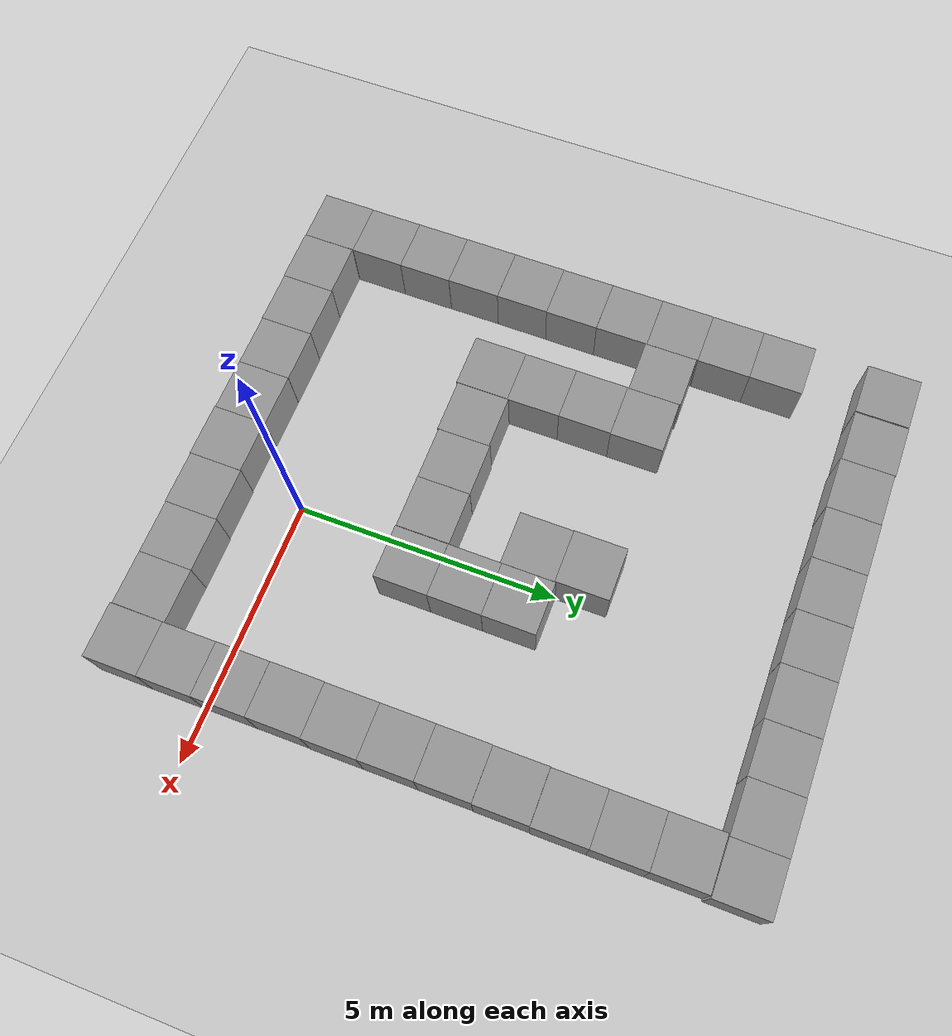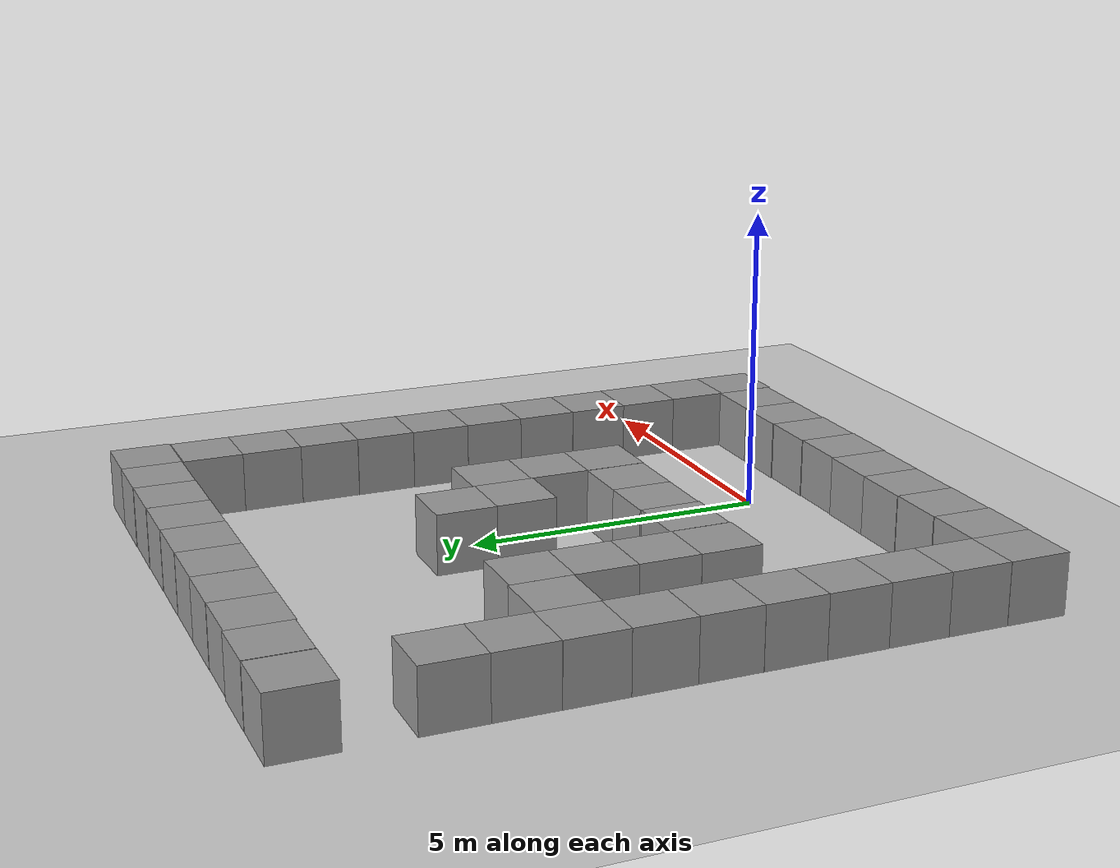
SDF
<sdf version="1.6">
 <world name="default">
  <light name="sun" type="directional">
   <pose>0 0 10 0 -0 0</pose>
   <diffuse>0.8 0.8 0.8 1</diffuse>
   <specular>0.2 0.2 0.2 1</specular>
   <attenuation>
    <range>1000</range>
    <constant>0.9</constant>
    <linear>0.01</linear>
    <quadratic>0.001</quadratic>
   </attenuation>
   <direction>-0.5 0.1 -0.9</direction>
  </light>
  <model name="ground_plane">
   <static>1</static>
   <link name="link">
    <collision name="collision">
     <geometry><plane><normal>0 0 1</normal><size>100 100</size></plane></geometry>
     <surface>
      <contact><collide_bitmask>65535</collide_bitmask></contact>
      <friction><ode><mu>100</mu><mu2>50</mu2></ode></friction>
     </surface>
    </collision>
    <visual name="visual">
     <cast_shadows>0</cast_shadows>
     <geometry><plane><normal>0 0 1</normal><size>100 100</size></plane></geometry>
     <material>
      <script><uri>file://media/materials/scripts/gazebo.material</uri><name>Gazebo/Grey</name></script>
     </material>
    </visual>
   </link>
  </model>
  <gravity>0 0 -9.8</gravity>
  <magnetic_field>6e-06 2.3e-05 -4.2e-05</magnetic_field>
  <atmosphere type="adiabatic"/>
  <physics name="default_physics" default="0" type="ode">
   <max_step_size>0.001</max_step_size>
   <real_time_factor>1</real_time_factor>
   <real_time_update_rate>1000</real_time_update_rate>
  </physics>
  <scene><ambient>0.4 0.4 0.4 1</ambient><background>0.7 0.7 0.7 1</background><shadows>1</shadows></scene>
  <audio><device>default</device></audio>
  <spherical_coordinates>
   <surface_model>EARTH_WGS84</surface_model>
   <latitude_deg>0</latitude_deg>
   <longitude_deg>0</longitude_deg>
   <elevation>0</elevation>
   <heading_deg>0</heading_deg>
  </spherical_coordinates>
  <model name="unit_box">
   <pose>0.512325 -1.49873 0.5 0 -0 -0.00291</pose>
   <link name="link">
    <inertial>
     <mass>1</mass>
     <inertia>
      <ixx>0.166667</ixx>
      <ixy>0</ixy>
      <ixz>0</ixz>
      <iyy>0.166667</iyy>
      <iyz>0</iyz>
      <izz>0.166667</izz>
     </inertia>
    </inertial>
    <collision name="collision"><geometry><box><size>1 1 1</size></box></geometry></collision>
    <visual name="visual">
     <geometry><box><size>1 1 1</size></box></geometry>
     <material>
      <script><name>Gazebo/Grey</name><uri>file://media/materials/scripts/gazebo.material</uri></script>
     </material>
    </visual>
   </link>
  </model>
  <model name="unit_box_0">
   <pose>1.51239 -1.48593 0.499995 -0 1e-05 -0.002932</pose>
   <link name="link">
    <inertial>
     <mass>1</mass>
     <inertia>
      <ixx>0.166667</ixx>
      <ixy>0</ixy>
      <ixz>0</ixz>
      <iyy>0.166667</iyy>
      <iyz>0</iyz>
      <izz>0.166667</izz>
     </inertia>
    </inertial>
    <collision name="collision"><geometry><box><size>1 1 1</size></box></geometry></collision>
    <visual name="visual">
     <geometry><box><size>1 1 1</size></box></geometry>
     <material>
      <script><name>Gazebo/Grey</name><uri>file://media/materials/scripts/gazebo.material</uri></script>
     </material>
    </visual>
   </link>
  </model>
  <model name="unit_box_1">
   <pose>2.51238 -1.48866 0.5 0 0 -0.002927</pose>
   <link name="link">
    <inertial>
     <mass>1</mass>
     <inertia>
      <ixx>0.166667</ixx>
      <ixy>0</ixy>
      <ixz>0</ixz>
      <iyy>0.166667</iyy>
      <iyz>0</iyz>
      <izz>0.166667</izz>
     </inertia>
    </inertial>
    <collision name="collision"><geometry><box><size>1 1 1</size></box></geometry></collision>
    <visual name="visual">
     <geometry><box><size>1 1 1</size></box></geometry>
     <material>
      <script><name>Gazebo/Grey</name><uri>file://media/materials/scripts/gazebo.material</uri></script>
     </material>
    </visual>
   </link>
  </model>
  <model name="unit_box_2">
   <pose>3.51566 -1.52213 0.499995 -1e-05 -0 0.003082</pose>
   <link name="link">
    <inertial>
     <mass>1</mass>
     <inertia>
      <ixx>0.166667</ixx>
      <ixy>0</ixy>
      <ixz>0</ixz>
      <iyy>0.166667</iyy>
      <iyz>0</iyz>
      <izz>0.166667</izz>
     </inertia>
    </inertial>
    <collision name="collision"><geometry><box><size>1 1 1</size></box></geometry></collision>
    <visual name="visual">
     <geometry><box><size>1 1 1</size></box></geometry>
     <material>
      <script><name>Gazebo/Grey</name><uri>file://media/materials/scripts/gazebo.material</uri></script>
     </material>
    </visual>
   </link>
  </model>
  <model name="unit_box_3">
   <pose>3.51224 -0.521809 0.499995 0 1e-05 0.003452</pose>
   <link name="link">
    <inertial>
     <mass>1</mass>
     <inertia>
      <ixx>0.166667</ixx>
      <ixy>0</ixy>
      <ixz>0</ixz>
      <iyy>0.166667</iyy>
      <iyz>0</iyz>
      <izz>0.166667</izz>
     </inertia>
    </inertial>
    <collision name="collision"><geometry><box><size>1 1 1</size></box></geometry></collision>
    <visual name="visual">
     <geometry><box><size>1 1 1</size></box></geometry>
     <material>
      <script><name>Gazebo/Grey</name><uri>file://media/materials/scripts/gazebo.material</uri></script>
     </material>
    </visual>
   </link>
  </model>
  <model name="unit_box_4">
   <pose>3.50476 0.478391 0.499995 0 -1e-05 0.00337</pose>
   <link name="link">
    <inertial>
     <mass>1</mass>
     <inertia>
      <ixx>0.166667</ixx>
      <ixy>0</ixy>
      <ixz>0</ixz>
      <iyy>0.166667</iyy>
      <iyz>0</iyz>
      <izz>0.166667</izz>
     </inertia>
    </inertial>
    <collision name="collision"><geometry><box><size>1 1 1</size></box></geometry></collision>
    <visual name="visual">
     <geometry><box><size>1 1 1</size></box></geometry>
     <material>
      <script><name>Gazebo/Grey</name><uri>file://media/materials/scripts/gazebo.material</uri></script>
     </material>
    </visual>
   </link>
  </model>
  <model name="unit_box_5">
   <pose>3.49953 1.47848 0.499995 -1e-05 -0 0.003543</pose>
   <link name="link">
    <inertial>
     <mass>1</mass>
     <inertia>
      <ixx>0.166667</ixx>
      <ixy>0</ixy>
      <ixz>0</ixz>
      <iyy>0.166667</iyy>
      <iyz>0</iyz>
      <izz>0.166667</izz>
     </inertia>
    </inertial>
    <collision name="collision"><geometry><box><size>1 1 1</size></box></geometry></collision>
    <visual name="visual">
     <geometry><box><size>1 1 1</size></box></geometry>
     <material>
      <script><name>Gazebo/Grey</name><uri>file://media/materials/scripts/gazebo.material</uri></script>
     </material>
    </visual>
   </link>
  </model>
  <model name="unit_box_6">
   <pose>3.50307 2.47865 0.499995 1e-05 -0 0.003854</pose>
   <link name="link">
    <inertial>
     <mass>1</mass>
     <inertia>
      <ixx>0.166667</ixx>
      <ixy>0</ixy>
      <ixz>0</ixz>
      <iyy>0.166667</iyy>
      <iyz>0</iyz>
      <izz>0.166667</izz>
     </inertia>
    </inertial>
    <collision name="collision"><geometry><box><size>1 1 1</size></box></geometry></collision>
    <visual name="visual">
     <geometry><box><size>1 1 1</size></box></geometry>
     <material>
      <script><name>Gazebo/Grey</name><uri>file://media/materials/scripts/gazebo.material</uri></script>
     </material>
    </visual>
   </link>
  </model>
  <model name="unit_box_7">
   <pose>3.49875 3.47876 0.499995 -1e-05 0 0.004044</pose>
   <link name="link">
    <inertial>
     <mass>1</mass>
     <inertia>
      <ixx>0.166667</ixx>
      <ixy>0</ixy>
      <ixz>0</ixz>
      <iyy>0.166667</iyy>
      <iyz>0</iyz>
      <izz>0.166667</izz>
     </inertia>
    </inertial>
    <collision name="collision"><geometry><box><size>1 1 1</size></box></geometry></collision>
    <visual name="visual">
     <geometry><box><size>1 1 1</size></box></geometry>
     <material>
      <script><name>Gazebo/Grey</name><uri>file://media/materials/scripts/gazebo.material</uri></script>
     </material>
    </visual>
   </link>
  </model>
  <model name="unit_box_8">
   <pose>3.49659 4.47894 0.499995 1e-05 -0 0.004416</pose>
   <link name="link">
    <inertial>
     <mass>1</mass>
     <inertia>
      <ixx>0.166667</ixx>
      <ixy>0</ixy>
      <ixz>0</ixz>
      <iyy>0.166667</iyy>
      <iyz>0</iyz>
      <izz>0.166667</izz>
     </inertia>
    </inertial>
    <collision name="collision"><geometry><box><size>1 1 1</size></box></geometry></collision>
    <visual name="visual">
     <geometry><box><size>1 1 1</size></box></geometry>
     <material>
      <script><name>Gazebo/Grey</name><uri>file://media/materials/scripts/gazebo.material</uri></script>
     </material>
    </visual>
   </link>
  </model>
  <model name="unit_box_9">
   <pose>3.50036 5.47939 0.499995 -1e-05 0 0.00411</pose>
   <link name="link">
    <inertial>
     <mass>1</mass>
     <inertia>
      <ixx>0.166667</ixx>
      <ixy>0</ixy>
      <ixz>0</ixz>
      <iyy>0.166667</iyy>
      <iyz>0</iyz>
      <izz>0.166667</izz>
     </inertia>
    </inertial>
    <collision name="collision"><geometry><box><size>1 1 1</size></box></geometry></collision>
    <visual name="visual">
     <geometry><box><size>1 1 1</size></box></geometry>
     <material>
      <script><name>Gazebo/Grey</name><uri>file://media/materials/scripts/gazebo.material</uri></script>
     </material>
    </visual>
   </link>
  </model>
  <model name="unit_box_10">
   <pose>3.50475 6.48215 0.499995 -1e-05 0 0.004785</pose>
   <link name="link">
    <inertial>
     <mass>1</mass>
     <inertia>
      <ixx>0.166667</ixx>
      <ixy>0</ixy>
      <ixz>0</ixz>
      <iyy>0.166667</iyy>
      <iyz>0</iyz>
      <izz>0.166667</izz>
     </inertia>
    </inertial>
    <collision name="collision"><geometry><box><size>1 1 1</size></box></geometry></collision>
    <visual name="visual">
     <geometry><box><size>1 1 1</size></box></geometry>
     <material>
      <script><name>Gazebo/Grey</name><uri>file://media/materials/scripts/gazebo.material</uri></script>
     </material>
    </visual>
   </link>
  </model>
  <model name="unit_box_11">
   <pose>3.50058 7.48224 0.499995 1e-05 -0 0.004966</pose>
   <link name="link">
    <inertial>
     <mass>1</mass>
     <inertia>
      <ixx>0.166667</ixx>
      <ixy>0</ixy>
      <ixz>0</ixz>
      <iyy>0.166667</iyy>
      <iyz>0</iyz>
      <izz>0.166667</izz>
     </inertia>
    </inertial>
    <collision name="collision"><geometry><box><size>1 1 1</size></box></geometry></collision>
    <visual name="visual">
     <geometry><box><size>1 1 1</size></box></geometry>
     <material>
      <script><name>Gazebo/Grey</name><uri>file://media/materials/scripts/gazebo.material</uri></script>
     </material>
    </visual>
   </link>
  </model>
  <model name="unit_box_12">
   <pose>-0.487799 -1.50977 0.499995 -0 9e-06 -0.002724</pose>
   <link name="link">
    <inertial>
     <mass>1</mass>
     <inertia>
      <ixx>0.166667</ixx>
      <ixy>0</ixy>
      <ixz>0</ixz>
      <iyy>0.166667</iyy>
      <iyz>0</iyz>
      <izz>0.166667</izz>
     </inertia>
    </inertial>
    <collision name="collision"><geometry><box><size>1 1 1</size></box></geometry></collision>
    <visual name="visual">
     <geometry><box><size>1 1 1</size></box></geometry>
     <material>
      <script><name>Gazebo/Grey</name><uri>file://media/materials/scripts/gazebo.material</uri></script>
     </material>
    </visual>
   </link>
  </model>
  <model name="unit_box_13">
   <pose>-1.48776 -1.49198 0.5 0 -0 -0.002718</pose>
   <link name="link">
    <inertial>
     <mass>1</mass>
     <inertia>
      <ixx>0.166667</ixx>
      <ixy>0</ixy>
      <ixz>0</ixz>
      <iyy>0.166667</iyy>
      <iyz>0</iyz>
      <izz>0.166667</izz>
     </inertia>
    </inertial>
    <collision name="collision"><geometry><box><size>1 1 1</size></box></geometry></collision>
    <visual name="visual">
     <geometry><box><size>1 1 1</size></box></geometry>
     <material>
      <script><name>Gazebo/Grey</name><uri>file://media/materials/scripts/gazebo.material</uri></script>
     </material>
    </visual>
   </link>
  </model>
  <model name="unit_box_14">
   <pose>-2.4879 -1.48697 0.5 -0 -0 -0.002435</pose>
   <link name="link">
    <inertial>
     <mass>1</mass>
     <inertia>
      <ixx>0.166667</ixx>
      <ixy>0</ixy>
      <ixz>0</ixz>
      <iyy>0.166667</iyy>
      <iyz>0</iyz>
      <izz>0.166667</izz>
     </inertia>
    </inertial>
    <collision name="collision"><geometry><box><size>1 1 1</size></box></geometry></collision>
    <visual name="visual">
     <geometry><box><size>1 1 1</size></box></geometry>
     <material>
      <script><name>Gazebo/Grey</name><uri>file://media/materials/scripts/gazebo.material</uri></script>
     </material>
    </visual>
   </link>
  </model>
  <model name="unit_box_15">
   <pose>-3.48816 -1.49537 0.5 -0 -0 -0.001958</pose>
   <link name="link">
    <inertial>
     <mass>1</mass>
     <inertia>
      <ixx>0.166667</ixx>
      <ixy>0</ixy>
      <ixz>0</ixz>
      <iyy>0.166667</iyy>
      <iyz>0</iyz>
      <izz>0.166667</izz>
     </inertia>
    </inertial>
    <collision name="collision"><geometry><box><size>1 1 1</size></box></geometry></collision>
    <visual name="visual">
     <geometry><box><size>1 1 1</size></box></geometry>
     <material>
      <script><name>Gazebo/Grey</name><uri>file://media/materials/scripts/gazebo.material</uri></script>
     </material>
    </visual>
   </link>
  </model>
  <model name="unit_box_16">
   <pose>-4.4886 -1.50771 0.5 0 0 -0.001113</pose>
   <link name="link">
    <inertial>
     <mass>1</mass>
     <inertia>
      <ixx>0.166667</ixx>
      <ixy>0</ixy>
      <ixz>0</ixz>
      <iyy>0.166667</iyy>
      <iyz>0</iyz>
      <izz>0.166667</izz>
     </inertia>
    </inertial>
    <collision name="collision"><geometry><box><size>1 1 1</size></box></geometry></collision>
    <visual name="visual">
     <geometry><box><size>1 1 1</size></box></geometry>
     <material>
      <script><name>Gazebo/Grey</name><uri>file://media/materials/scripts/gazebo.material</uri></script>
     </material>
    </visual>
   </link>
  </model>
  <model name="unit_box_17">
   <pose>3.49432 8.48235 0.499995 -1e-05 -0 0.004954</pose>
   <link name="link">
    <inertial>
     <mass>1</mass>
     <inertia>
      <ixx>0.166667</ixx>
      <ixy>0</ixy>
      <ixz>0</ixz>
      <iyy>0.166667</iyy>
      <iyz>0</iyz>
      <izz>0.166667</izz>
     </inertia>
    </inertial>
    <collision name="collision"><geometry><box><size>1 1 1</size></box></geometry></collision>
    <visual name="visual">
     <geometry><box><size>1 1 1</size></box></geometry>
     <material>
      <script><name>Gazebo/Grey</name><uri>file://media/materials/scripts/gazebo.material</uri></script>
     </material>
    </visual>
   </link>
  </model>
  <model name="unit_box_18">
   <pose>1.53291 9.49602 0.499995 0 -1e-05 -0.003108</pose>
   <link name="link">
    <inertial>
     <mass>1</mass>
     <inertia>
      <ixx>0.166667</ixx>
      <ixy>0</ixy>
      <ixz>0</ixz>
      <iyy>0.166667</iyy>
      <iyz>0</iyz>
      <izz>0.166667</izz>
     </inertia>
    </inertial>
    <collision name="collision"><geometry><box><size>1 1 1</size></box></geometry></collision>
    <visual name="visual">
     <geometry><box><size>1 1 1</size></box></geometry>
     <material>
      <script><name>Gazebo/Grey</name><uri>file://media/materials/scripts/gazebo.material</uri></script>
     </material>
    </visual>
   </link>
  </model>
  <model name="unit_box_19">
   <pose>2.53295 9.49974 0.499995 0 1e-05 -0.003122</pose>
   <link name="link">
    <inertial>
     <mass>1</mass>
     <inertia>
      <ixx>0.166667</ixx>
      <ixy>0</ixy>
      <ixz>0</ixz>
      <iyy>0.166667</iyy>
      <iyz>0</iyz>
      <izz>0.166667</izz>
     </inertia>
    </inertial>
    <collision name="collision"><geometry><box><size>1 1 1</size></box></geometry></collision>
    <visual name="visual">
     <geometry><box><size>1 1 1</size></box></geometry>
     <material>
      <script><name>Gazebo/Grey</name><uri>file://media/materials/scripts/gazebo.material</uri></script>
     </material>
    </visual>
   </link>
  </model>
  <model name="unit_box_20">
   <pose>3.53296 9.49501 0.5 0 -0 -0.003156</pose>
   <link name="link">
    <inertial>
     <mass>1</mass>
     <inertia>
      <ixx>0.166667</ixx>
      <ixy>0</ixy>
      <ixz>0</ixz>
      <iyy>0.166667</iyy>
      <iyz>0</iyz>
      <izz>0.166667</izz>
     </inertia>
    </inertial>
    <collision name="collision"><geometry><box><size>1 1 1</size></box></geometry></collision>
    <visual name="visual">
     <geometry><box><size>1 1 1</size></box></geometry>
     <material>
      <script><name>Gazebo/Grey</name><uri>file://media/materials/scripts/gazebo.material</uri></script>
     </material>
    </visual>
   </link>
  </model>
  <model name="unit_box_21">
   <pose>0.532235 9.49342 0.499995 1e-05 0 -0.001776</pose>
   <link name="link">
    <inertial>
     <mass>1</mass>
     <inertia>
      <ixx>0.166667</ixx>
      <ixy>0</ixy>
      <ixz>0</ixz>
      <iyy>0.166667</iyy>
      <iyz>0</iyz>
      <izz>0.166667</izz>
     </inertia>
    </inertial>
    <collision name="collision"><geometry><box><size>1 1 1</size></box></geometry></collision>
    <visual name="visual">
     <geometry><box><size>1 1 1</size></box></geometry>
     <material>
      <script><name>Gazebo/Grey</name><uri>file://media/materials/scripts/gazebo.material</uri></script>
     </material>
    </visual>
   </link>
  </model>
  <model name="unit_box_22">
   <pose>-0.467789 9.49127 0.499995 -1e-05 0 -0.001741</pose>
   <link name="link">
    <inertial>
     <mass>1</mass>
     <inertia>
      <ixx>0.166667</ixx>
      <ixy>0</ixy>
      <ixz>0</ixz>
      <iyy>0.166667</iyy>
      <iyz>0</iyz>
      <izz>0.166667</izz>
     </inertia>
    </inertial>
    <collision name="collision"><geometry><box><size>1 1 1</size></box></geometry></collision>
    <visual name="visual">
     <geometry><box><size>1 1 1</size></box></geometry>
     <material>
      <script><name>Gazebo/Grey</name><uri>file://media/materials/scripts/gazebo.material</uri></script>
     </material>
    </visual>
   </link>
  </model>
  <model name="unit_box_23">
   <pose>-1.46821 9.49008 0.499995 -1e-05 0 -0.001752</pose>
   <link name="link">
    <inertial>
     <mass>1</mass>
     <inertia>
      <ixx>0.166667</ixx>
      <ixy>0</ixy>
      <ixz>0</ixz>
      <iyy>0.166667</iyy>
      <iyz>0</iyz>
      <izz>0.166667</izz>
     </inertia>
    </inertial>
    <collision name="collision"><geometry><box><size>1 1 1</size></box></geometry></collision>
    <visual name="visual">
     <geometry><box><size>1 1 1</size></box></geometry>
     <material>
      <script><name>Gazebo/Grey</name><uri>file://media/materials/scripts/gazebo.material</uri></script>
     </material>
    </visual>
   </link>
  </model>
  <model name="unit_box_24">
   <pose>-2.4689 9.49488 0.499995 0 -1e-05 -0.001702</pose>
   <link name="link">
    <inertial>
     <mass>1</mass>
     <inertia>
      <ixx>0.166667</ixx>
      <ixy>0</ixy>
      <ixz>0</ixz>
      <iyy>0.166667</iyy>
      <iyz>0</iyz>
      <izz>0.166667</izz>
     </inertia>
    </inertial>
    <collision name="collision"><geometry><box><size>1 1 1</size></box></geometry></collision>
    <visual name="visual">
     <geometry><box><size>1 1 1</size></box></geometry>
     <material>
      <script><name>Gazebo/Grey</name><uri>file://media/materials/scripts/gazebo.material</uri></script>
     </material>
    </visual>
   </link>
  </model>
  <model name="unit_box_25">
   <pose>-3.46897 9.4915 0.499995 0 -1e-05 -0.001718</pose>
   <link name="link">
    <inertial>
     <mass>1</mass>
     <inertia>
      <ixx>0.166667</ixx>
      <ixy>0</ixy>
      <ixz>0</ixz>
      <iyy>0.166667</iyy>
      <iyz>0</iyz>
      <izz>0.166667</izz>
     </inertia>
    </inertial>
    <collision name="collision"><geometry><box><size>1 1 1</size></box></geometry></collision>
    <visual name="visual">
     <geometry><box><size>1 1 1</size></box></geometry>
     <material>
      <script><name>Gazebo/Grey</name><uri>file://media/materials/scripts/gazebo.material</uri></script>
     </material>
    </visual>
   </link>
  </model>
  <model name="unit_box_26">
   <pose>-4.46894 9.51173 0.499995 0 1e-05 -0.001687</pose>
   <link name="link">
    <inertial>
     <mass>1</mass>
     <inertia>
      <ixx>0.166667</ixx>
      <ixy>0</ixy>
      <ixz>0</ixz>
      <iyy>0.166667</iyy>
      <iyz>0</iyz>
      <izz>0.166667</izz>
     </inertia>
    </inertial>
    <collision name="collision"><geometry><box><size>1 1 1</size></box></geometry></collision>
    <visual name="visual">
     <geometry><box><size>1 1 1</size></box></geometry>
     <material>
      <script><name>Gazebo/Grey</name><uri>file://media/materials/scripts/gazebo.material</uri></script>
     </material>
    </visual>
   </link>
  </model>
  <model name="unit_box_27">
   <pose>-5.48621 9.51038 0.499995 -1e-05 -0 -0</pose>
   <link name="link">
    <inertial>
     <mass>1</mass>
     <inertia>
      <ixx>0.166667</ixx>
      <ixy>0</ixy>
      <ixz>0</ixz>
      <iyy>0.166667</iyy>
      <iyz>0</iyz>
      <izz>0.166667</izz>
     </inertia>
    </inertial>
    <collision name="collision"><geometry><box><size>1 1 1</size></box></geometry></collision>
    <visual name="visual">
     <geometry><box><size>1 1 1</size></box></geometry>
     <material>
      <script><name>Gazebo/Grey</name><uri>file://media/materials/scripts/gazebo.material</uri></script>
     </material>
    </visual>
   </link>
  </model>
  <model name="unit_box_28">
   <pose>-5.48586 7.50149 0.499995 0 1e-05 0.001127</pose>
   <link name="link">
    <inertial>
     <mass>1</mass>
     <inertia>
      <ixx>0.166667</ixx>
      <ixy>0</ixy>
      <ixz>0</ixz>
      <iyy>0.166667</iyy>
      <iyz>0</iyz>
      <izz>0.166667</izz>
     </inertia>
    </inertial>
    <collision name="collision"><geometry><box><size>1 1 1</size></box></geometry></collision>
    <visual name="visual">
     <geometry><box><size>1 1 1</size></box></geometry>
     <material>
      <script><name>Gazebo/Grey</name><uri>file://media/materials/scripts/gazebo.material</uri></script>
     </material>
    </visual>
   </link>
  </model>
  <model name="unit_box_29">
   <pose>-5.48488 6.50149 0.499995 -0 -1e-05 0.001127</pose>
   <link name="link">
    <inertial>
     <mass>1</mass>
     <inertia>
      <ixx>0.166667</ixx>
      <ixy>0</ixy>
      <ixz>0</ixz>
      <iyy>0.166667</iyy>
      <iyz>0</iyz>
      <izz>0.166667</izz>
     </inertia>
    </inertial>
    <collision name="collision"><geometry><box><size>1 1 1</size></box></geometry></collision>
    <visual name="visual">
     <geometry><box><size>1 1 1</size></box></geometry>
     <material>
      <script><name>Gazebo/Grey</name><uri>file://media/materials/scripts/gazebo.material</uri></script>
     </material>
    </visual>
   </link>
  </model>
  <model name="unit_box_30">
   <pose>-5.48785 5.50134 0.5 0 -0 0.001421</pose>
   <link name="link">
    <inertial>
     <mass>1</mass>
     <inertia>
      <ixx>0.166667</ixx>
      <ixy>0</ixy>
      <ixz>0</ixz>
      <iyy>0.166667</iyy>
      <iyz>0</iyz>
      <izz>0.166667</izz>
     </inertia>
    </inertial>
    <collision name="collision"><geometry><box><size>1 1 1</size></box></geometry></collision>
    <visual name="visual">
     <geometry><box><size>1 1 1</size></box></geometry>
     <material>
      <script><name>Gazebo/Grey</name><uri>file://media/materials/scripts/gazebo.material</uri></script>
     </material>
    </visual>
   </link>
  </model>
  <model name="unit_box_31">
   <pose>-5.48592 4.50104 0.5 0 -0 0.001877</pose>
   <link name="link">
    <inertial>
     <mass>1</mass>
     <inertia>
      <ixx>0.166667</ixx>
      <ixy>0</ixy>
      <ixz>0</ixz>
      <iyy>0.166667</iyy>
      <iyz>0</iyz>
      <izz>0.166667</izz>
     </inertia>
    </inertial>
    <collision name="collision"><geometry><box><size>1 1 1</size></box></geometry></collision>
    <visual name="visual">
     <geometry><box><size>1 1 1</size></box></geometry>
     <material>
      <script><name>Gazebo/Grey</name><uri>file://media/materials/scripts/gazebo.material</uri></script>
     </material>
    </visual>
   </link>
  </model>
  <model name="unit_box_32">
   <pose>-5.48458 3.5008 0.499995 -1e-05 0 0.001403</pose>
   <link name="link">
    <inertial>
     <mass>1</mass>
     <inertia>
      <ixx>0.166667</ixx>
      <ixy>0</ixy>
      <ixz>0</ixz>
      <iyy>0.166667</iyy>
      <iyz>0</iyz>
      <izz>0.166667</izz>
     </inertia>
    </inertial>
    <collision name="collision"><geometry><box><size>1 1 1</size></box></geometry></collision>
    <visual name="visual">
     <geometry><box><size>1 1 1</size></box></geometry>
     <material>
      <script><name>Gazebo/Grey</name><uri>file://media/materials/scripts/gazebo.material</uri></script>
     </material>
    </visual>
   </link>
  </model>
  <model name="unit_box_33">
   <pose>-5.48806 2.50078 0.499995 0 -1e-05 0.001382</pose>
   <link name="link">
    <inertial>
     <mass>1</mass>
     <inertia>
      <ixx>0.166667</ixx>
      <ixy>0</ixy>
      <ixz>0</ixz>
      <iyy>0.166667</iyy>
      <iyz>0</iyz>
      <izz>0.166667</izz>
     </inertia>
    </inertial>
    <collision name="collision"><geometry><box><size>1 1 1</size></box></geometry></collision>
    <visual name="visual">
     <geometry><box><size>1 1 1</size></box></geometry>
     <material>
      <script><name>Gazebo/Grey</name><uri>file://media/materials/scripts/gazebo.material</uri></script>
     </material>
    </visual>
   </link>
  </model>
  <model name="unit_box_34">
   <pose>-5.48956 1.50059 0.499995 0 1e-05 0.00101</pose>
   <link name="link">
    <inertial>
     <mass>1</mass>
     <inertia>
      <ixx>0.166667</ixx>
      <ixy>0</ixy>
      <ixz>0</ixz>
      <iyy>0.166667</iyy>
      <iyz>0</iyz>
      <izz>0.166667</izz>
     </inertia>
    </inertial>
    <collision name="collision"><geometry><box><size>1 1 1</size></box></geometry></collision>
    <visual name="visual">
     <geometry><box><size>1 1 1</size></box></geometry>
     <material>
      <script><name>Gazebo/Grey</name><uri>file://media/materials/scripts/gazebo.material</uri></script>
     </material>
    </visual>
   </link>
  </model>
  <model name="unit_box_35">
   <pose>-5.48558 0.500562 0.499995 0 1e-05 0.000964</pose>
   <link name="link">
    <inertial>
     <mass>1</mass>
     <inertia>
      <ixx>0.166667</ixx>
      <ixy>0</ixy>
      <ixz>0</ixz>
      <iyy>0.166667</iyy>
      <iyz>0</iyz>
      <izz>0.166667</izz>
     </inertia>
    </inertial>
    <collision name="collision"><geometry><box><size>1 1 1</size></box></geometry></collision>
    <visual name="visual">
     <geometry><box><size>1 1 1</size></box></geometry>
     <material>
      <script><name>Gazebo/Grey</name><uri>file://media/materials/scripts/gazebo.material</uri></script>
     </material>
    </visual>
   </link>
  </model>
  <model name="unit_box_36">
   <pose>-5.48513 -0.499476 0.499995 -0 -1e-05 0.000894</pose>
   <link name="link">
    <inertial>
     <mass>1</mass>
     <inertia>
      <ixx>0.166667</ixx>
      <ixy>0</ixy>
      <ixz>0</ixz>
      <iyy>0.166667</iyy>
      <iyz>0</iyz>
      <izz>0.166667</izz>
     </inertia>
    </inertial>
    <collision name="collision"><geometry><box><size>1 1 1</size></box></geometry></collision>
    <visual name="visual">
     <geometry><box><size>1 1 1</size></box></geometry>
     <material>
      <script><name>Gazebo/Grey</name><uri>file://media/materials/scripts/gazebo.material</uri></script>
     </material>
    </visual>
   </link>
  </model>
  <model name="unit_box_37">
   <pose>-5.48958 -1.4995 0.5 0 -0 0.000851</pose>
   <link name="link">
    <inertial>
     <mass>1</mass>
     <inertia>
      <ixx>0.166667</ixx>
      <ixy>0</ixy>
      <ixz>0</ixz>
      <iyy>0.166667</iyy>
      <iyz>0</iyz>
      <izz>0.166667</izz>
     </inertia>
    </inertial>
    <collision name="collision"><geometry><box><size>1 1 1</size></box></geometry></collision>
    <visual name="visual">
     <geometry><box><size>1 1 1</size></box></geometry>
     <material>
      <script><name>Gazebo/Grey</name><uri>file://media/materials/scripts/gazebo.material</uri></script>
     </material>
    </visual>
   </link>
  </model>
  <model name="unit_box_38">
   <pose>-1.49151 2.5075 0.499995 0 -1e-05 0.001535</pose>
   <link name="link">
    <inertial>
     <mass>1</mass>
     <inertia>
      <ixx>0.166667</ixx>
      <ixy>0</ixy>
      <ixz>0</ixz>
      <iyy>0.166667</iyy>
      <iyz>0</iyz>
      <izz>0.166667</izz>
     </inertia>
    </inertial>
    <collision name="collision"><geometry><box><size>1 1 1</size></box></geometry></collision>
    <visual name="visual">
     <geometry><box><size>1 1 1</size></box></geometry>
     <material>
      <script><name>Gazebo/Grey</name><uri>file://media/materials/scripts/gazebo.material</uri></script>
     </material>
    </visual>
   </link>
  </model>
  <model name="unit_box_39">
   <pose>-0.49138 2.50706 0.499995 -1e-05 -0 0.001439</pose>
   <link name="link">
    <inertial>
     <mass>1</mass>
     <inertia>
      <ixx>0.166667</ixx>
      <ixy>0</ixy>
      <ixz>0</ixz>
      <iyy>0.166667</iyy>
      <iyz>0</iyz>
      <izz>0.166667</izz>
     </inertia>
    </inertial>
    <collision name="collision"><geometry><box><size>1 1 1</size></box></geometry></collision>
    <visual name="visual">
     <geometry><box><size>1 1 1</size></box></geometry>
     <material>
      <script><name>Gazebo/Grey</name><uri>file://media/materials/scripts/gazebo.material</uri></script>
     </material>
    </visual>
   </link>
  </model>
  <model name="unit_box_40">
   <pose>-2.4915 2.48456 0.499995 -1e-05 -0 0.001573</pose>
   <link name="link">
    <inertial>
     <mass>1</mass>
     <inertia>
      <ixx>0.166667</ixx>
      <ixy>0</ixy>
      <ixz>0</ixz>
      <iyy>0.166667</iyy>
      <iyz>0</iyz>
      <izz>0.166667</izz>
     </inertia>
    </inertial>
    <collision name="collision"><geometry><box><size>1 1 1</size></box></geometry></collision>
    <visual name="visual">
     <geometry><box><size>1 1 1</size></box></geometry>
     <material>
      <script><name>Gazebo/Grey</name><uri>file://media/materials/scripts/gazebo.material</uri></script>
     </material>
    </visual>
   </link>
  </model>
  <model name="unit_box_41">
   <pose>-3.49374 3.45797 0.499995 0 -1e-05 0.00025</pose>
   <link name="link">
    <inertial>
     <mass>1</mass>
     <inertia>
      <ixx>0.166667</ixx>
      <ixy>0</ixy>
      <ixz>0</ixz>
      <iyy>0.166667</iyy>
      <iyz>0</iyz>
      <izz>0.166667</izz>
     </inertia>
    </inertial>
    <collision name="collision"><geometry><box><size>1 1 1</size></box></geometry></collision>
    <visual name="visual">
     <geometry><box><size>1 1 1</size></box></geometry>
     <material>
      <script><name>Gazebo/Grey</name><uri>file://media/materials/scripts/gazebo.material</uri></script>
     </material>
    </visual>
   </link>
  </model>
  <model name="unit_box_42">
   <pose>-3.49368 4.45816 0.5 0 -0 0.000291</pose>
   <link name="link">
    <inertial>
     <mass>1</mass>
     <inertia>
      <ixx>0.166667</ixx>
      <ixy>0</ixy>
      <ixz>0</ixz>
      <iyy>0.166667</iyy>
      <iyz>0</iyz>
      <izz>0.166667</izz>
     </inertia>
    </inertial>
    <collision name="collision"><geometry><box><size>1 1 1</size></box></geometry></collision>
    <visual name="visual">
     <geometry><box><size>1 1 1</size></box></geometry>
     <material>
      <script><name>Gazebo/Grey</name><uri>file://media/materials/scripts/gazebo.material</uri></script>
     </material>
    </visual>
   </link>
  </model>
  <model name="unit_box_43">
   <pose>-3.48709 5.45839 0.499995 0 1e-05 0.000706</pose>
   <link name="link">
    <inertial>
     <mass>1</mass>
     <inertia>
      <ixx>0.166667</ixx>
      <ixy>0</ixy>
      <ixz>0</ixz>
      <iyy>0.166667</iyy>
      <iyz>0</iyz>
      <izz>0.166667</izz>
     </inertia>
    </inertial>
    <collision name="collision"><geometry><box><size>1 1 1</size></box></geometry></collision>
    <visual name="visual">
     <geometry><box><size>1 1 1</size></box></geometry>
     <material>
      <script><name>Gazebo/Grey</name><uri>file://media/materials/scripts/gazebo.material</uri></script>
     </material>
    </visual>
   </link>
  </model>
  <model name="unit_box_44">
   <pose>-4.48763 5.47995 0.499995 0 1e-05 0.001729</pose>
   <link name="link">
    <inertial>
     <mass>1</mass>
     <inertia>
      <ixx>0.166667</ixx>
      <ixy>0</ixy>
      <ixz>0</ixz>
      <iyy>0.166667</iyy>
      <iyz>0</iyz>
      <izz>0.166667</izz>
     </inertia>
    </inertial>
    <collision name="collision"><geometry><box><size>1 1 1</size></box></geometry></collision>
    <visual name="visual">
     <geometry><box><size>1 1 1</size></box></geometry>
     <material>
      <script><name>Gazebo/Grey</name><uri>file://media/materials/scripts/gazebo.material</uri></script>
     </material>
    </visual>
   </link>
  </model>
  <model name="unit_box_45">
   <pose>-3.4975 2.45774 0.499995 0 1e-05 9.8e-05</pose>
   <link name="link">
    <inertial>
     <mass>1</mass>
     <inertia>
      <ixx>0.166667</ixx>
      <ixy>0</ixy>
      <ixz>0</ixz>
      <iyy>0.166667</iyy>
      <iyz>0</iyz>
      <izz>0.166667</izz>
     </inertia>
    </inertial>
    <collision name="collision"><geometry><box><size>1 1 1</size></box></geometry></collision>
    <visual name="visual">
     <geometry><box><size>1 1 1</size></box></geometry>
     <material>
      <script><name>Gazebo/Grey</name><uri>file://media/materials/scripts/gazebo.material</uri></script>
     </material>
    </visual>
   </link>
  </model>
  <model name="unit_box_46">
   <pose>0.515849 2.49497 0.499995 1e-05 0 -0.002118</pose>
   <link name="link">
    <inertial>
     <mass>1</mass>
     <inertia>
      <ixx>0.166667</ixx>
      <ixy>0</ixy>
      <ixz>0</ixz>
      <iyy>0.166667</iyy>
      <iyz>0</iyz>
      <izz>0.166667</izz>
     </inertia>
    </inertial>
    <collision name="collision"><geometry><box><size>1 1 1</size></box></geometry></collision>
    <visual name="visual">
     <geometry><box><size>1 1 1</size></box></geometry>
     <material>
      <script><name>Gazebo/Grey</name><uri>file://media/materials/scripts/gazebo.material</uri></script>
     </material>
    </visual>
   </link>
  </model>
  <model name="unit_box_47">
   <pose>0.518536 3.49552 0.5 0 -0 -0.003199</pose>
   <link name="link">
    <inertial>
     <mass>1</mass>
     <inertia>
      <ixx>0.166667</ixx>
      <ixy>0</ixy>
      <ixz>0</ixz>
      <iyy>0.166667</iyy>
      <iyz>0</iyz>
      <izz>0.166667</izz>
     </inertia>
    </inertial>
    <collision name="collision"><geometry><box><size>1 1 1</size></box></geometry></collision>
    <visual name="visual">
     <geometry><box><size>1 1 1</size></box></geometry>
     <material>
      <script><name>Gazebo/Grey</name><uri>file://media/materials/scripts/gazebo.material</uri></script>
     </material>
    </visual>
   </link>
  </model>
  <model name="unit_box_48">
   <pose>0.521384 4.49641 0.499995 1e-05 0 -0.002164</pose>
   <link name="link">
    <inertial>
     <mass>1</mass>
     <inertia>
      <ixx>0.166667</ixx>
      <ixy>0</ixy>
      <ixz>0</ixz>
      <iyy>0.166667</iyy>
      <iyz>0</iyz>
      <izz>0.166667</izz>
     </inertia>
    </inertial>
    <collision name="collision"><geometry><box><size>1 1 1</size></box></geometry></collision>
    <visual name="visual">
     <geometry><box><size>1 1 1</size></box></geometry>
     <material>
      <script><name>Gazebo/Grey</name><uri>file://media/materials/scripts/gazebo.material</uri></script>
     </material>
    </visual>
   </link>
  </model>
  <model name="unit_box_49">
   <pose>-0.479248 4.46844 0.499995 0 -1e-05 -0.001437</pose>
   <link name="link">
    <inertial>
     <mass>1</mass>
     <inertia>
      <ixx>0.166667</ixx>
      <ixy>0</ixy>
      <ixz>0</ixz>
      <iyy>0.166667</iyy>
      <iyz>0</iyz>
      <izz>0.166667</izz>
     </inertia>
    </inertial>
    <collision name="collision"><geometry><box><size>1 1 1</size></box></geometry></collision>
    <visual name="visual">
     <geometry><box><size>1 1 1</size></box></geometry>
     <material>
      <script><name>Gazebo/Grey</name><uri>file://media/materials/scripts/gazebo.material</uri></script>
     </material>
    </visual>
   </link>
  </model>
  <model name="unit_box_50">
   <pose>-0.488162 5.46849 0.5 0 0 -0.00139</pose>
   <link name="link">
    <inertial>
     <mass>1</mass>
     <inertia>
      <ixx>0.166667</ixx>
      <ixy>0</ixy>
      <ixz>0</ixz>
      <iyy>0.166667</iyy>
      <iyz>0</iyz>
      <izz>0.166667</izz>
     </inertia>
    </inertial>
    <collision name="collision"><geometry><box><size>1 1 1</size></box></geometry></collision>
    <visual name="visual">
     <geometry><box><size>1 1 1</size></box></geometry>
     <material>
      <script><name>Gazebo/Grey</name><uri>file://media/materials/scripts/gazebo.material</uri></script>
     </material>
    </visual>
   </link>
  </model>
 </world>
</sdf>
